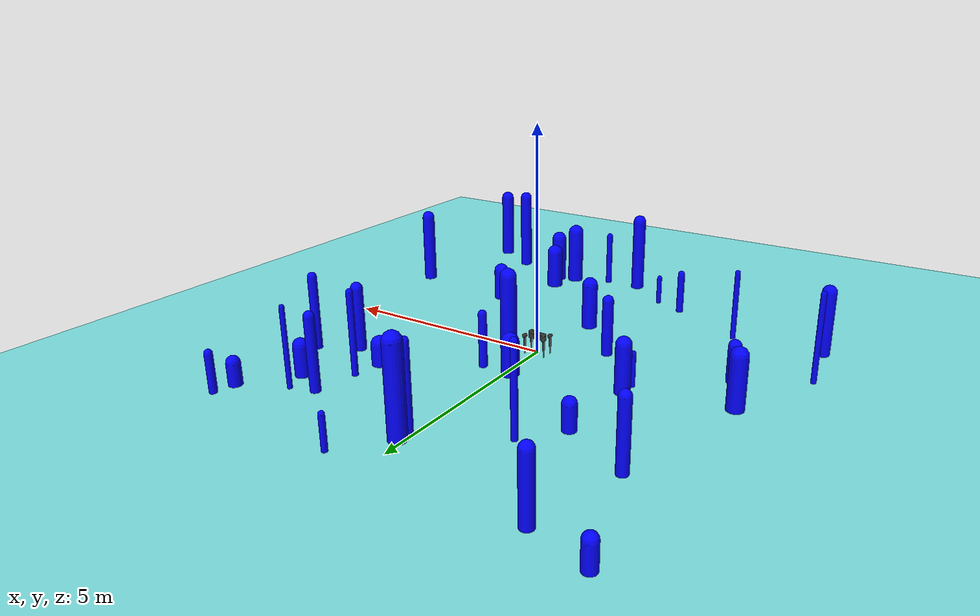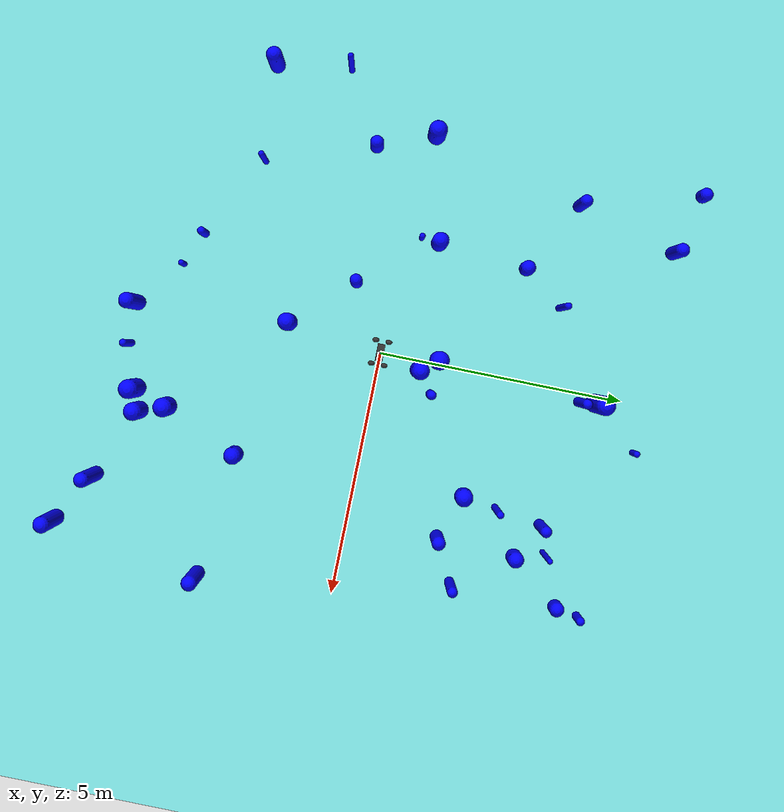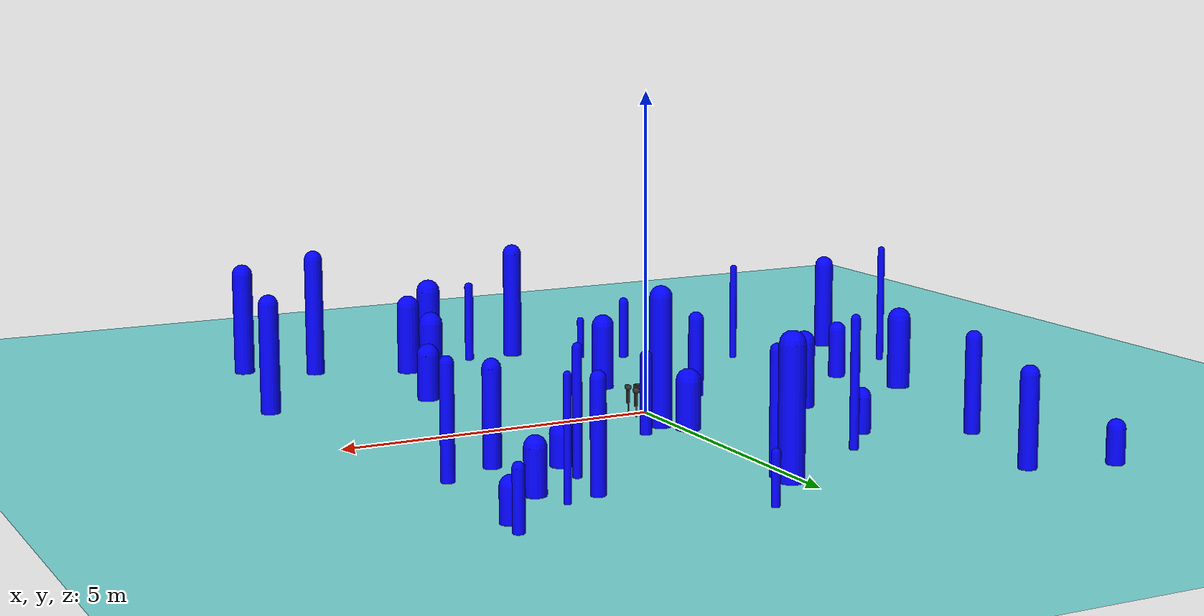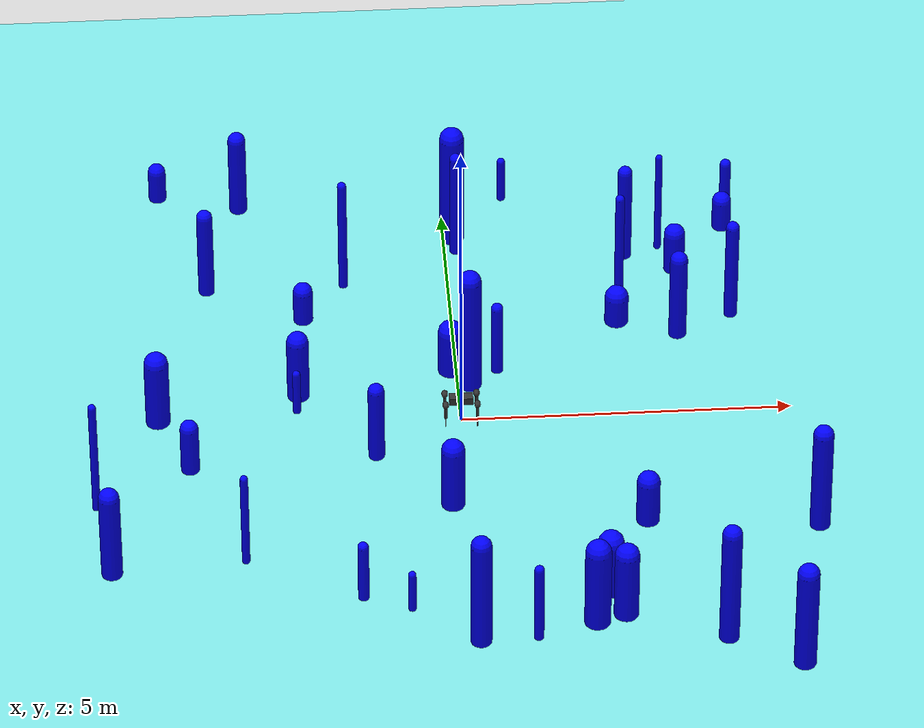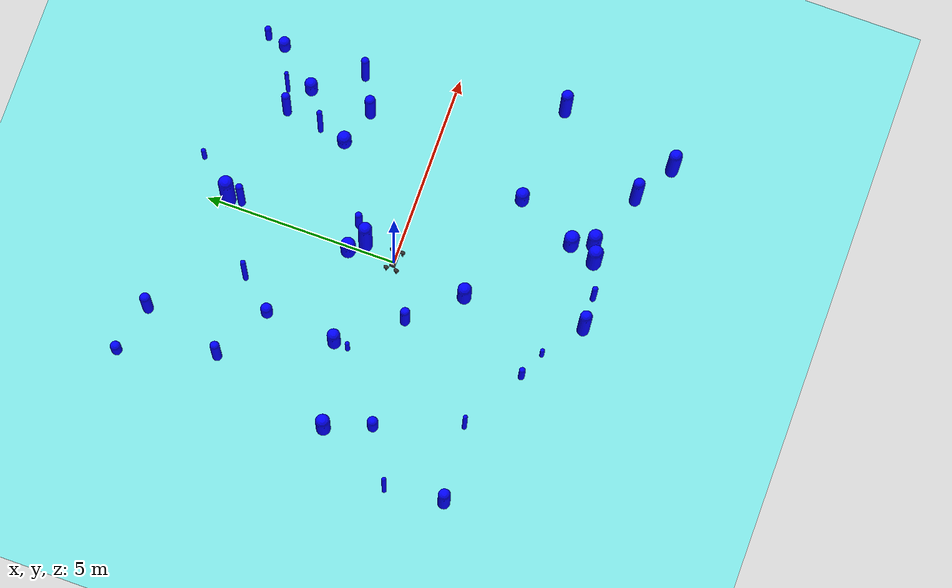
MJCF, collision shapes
<mujoco>
    <include file="aliengo.xml"/>
    <worldbody>

        <body name="obstacle_0" pos="-2.4640199677546835 0.36704106726352936 0.35321662955799593" mocap="true">
            <geom type="capsule" size="0.060185053728693705 0.35321662955799593" rgba="0 0 1 1"/>
        </body>

        <body name="obstacle_1" pos="3.44382551999896 1.8760022613102656 0.7100167168349087" mocap="true">
            <geom type="capsule" size="0.1363404340629551 0.7100167168349087" rgba="0 0 1 1"/>
        </body>

        <body name="obstacle_2" pos="-5.531245005733602 -1.7062367461974128 0.9565465494547261" mocap="true">
            <geom type="capsule" size="0.059006702047307805 0.9565465494547261" rgba="0 0 1 1"/>
        </body>

        <body name="obstacle_3" pos="4.368505242554532 4.527486313776363 0.24095493249636296" mocap="true">
            <geom type="capsule" size="0.14786279231984822 0.24095493249636296" rgba="0 0 1 1"/>
        </body>

        <body name="obstacle_4" pos="0.621016423618503 1.1701590388686123 0.5868228994480017" mocap="true">
            <geom type="capsule" size="0.0924482241285487 0.5868228994480017" rgba="0 0 1 1"/>
        </body>

        <body name="obstacle_5" pos="-2.4272913803787404 0.7381068639163333 0.5168379488376212" mocap="true">
            <geom type="capsule" size="0.16830510645183494 0.5168379488376212" rgba="0 0 1 1"/>
        </body>

        <body name="obstacle_6" pos="-0.9781873758494761 -4.2731529506960655 0.3207253555365417" mocap="true">
            <geom type="capsule" size="0.05828620253237357 0.3207253555365417" rgba="0 0 1 1"/>
        </body>

        <body name="obstacle_7" pos="2.616446324443748 -2.4921917459503375 0.35901909776027446" mocap="true">
            <geom type="capsule" size="0.17470458834657818 0.35901909776027446" rgba="0 0 1 1"/>
        </body>

        <body name="obstacle_8" pos="0.8158934366955721 -5.01192300945023 0.6359988591445763" mocap="true">
            <geom type="capsule" size="0.07384381168509133 0.6359988591445763" rgba="0 0 1 1"/>
        </body>

        <body name="obstacle_9" pos="2.1211486284355257 -4.578332821451083 0.555996852896055" mocap="true">
            <geom type="capsule" size="0.18319736512357987 0.555996852896055" rgba="0 0 1 1"/>
        </body>

        <body name="obstacle_10" pos="3.567212759943722 -5.184255260836483 0.9686302051734226" mocap="true">
            <geom type="capsule" size="0.14888080885640326 0.9686302051734226" rgba="0 0 1 1"/>
        </body>

        <body name="obstacle_11" pos="2.625312998693216 2.9229211816091585 0.9101890815085096" mocap="true">
            <geom type="capsule" size="0.07009185013636896 0.9101890815085096" rgba="0 0 1 1"/>
        </body>

        <body name="obstacle_12" pos="3.323694967266963 4.0558981463439014 0.8634438111267426" mocap="true">
            <geom type="capsule" size="0.05437354947797133 0.8634438111267426" rgba="0 0 1 1"/>
        </body>

        <body name="obstacle_13" pos="-1.3155061046809857 -0.7529760939835093 0.6165080508090655" mocap="true">
            <geom type="capsule" size="0.12393090112485264 0.6165080508090655" rgba="0 0 1 1"/>
        </body>

        <body name="obstacle_14" pos="-4.4348486134965714 5.812602371933666 0.2525618575344683" mocap="true">
            <geom type="capsule" size="0.1368926116616105 0.2525618575344683" rgba="0 0 1 1"/>
        </body>

        <body name="obstacle_15" pos="0.9692979010407354 5.452054386683091 0.3579550220109402" mocap="true">
            <geom type="capsule" size="0.062498810094560764 0.3579550220109402" rgba="0 0 1 1"/>
        </body>

        <body name="obstacle_16" pos="4.606370612798846 -5.811645684588676 0.8364757178828195" mocap="true">
            <geom type="capsule" size="0.16522856591424684 0.8364757178828195" rgba="0 0 1 1"/>
        </body>

        <body name="obstacle_17" pos="4.4645254314380445 4.993321036674663 0.41905055433422744" mocap="true">
            <geom type="capsule" size="0.08545716895738992 0.41905055433422744" rgba="0 0 1 1"/>
        </body>

        <body name="obstacle_18" pos="-2.273761876255348 2.5877191070216874 0.2661883914027227" mocap="true">
            <geom type="capsule" size="0.151322966450664 0.2661883914027227" rgba="0 0 1 1"/>
        </body>

        <body name="obstacle_19" pos="4.302296026530325 2.3147626093980733 0.8280669530111437" mocap="true">
            <geom type="capsule" size="0.10299218776709294 0.8280669530111437" rgba="0 0 1 1"/>
        </body>

        <body name="obstacle_20" pos="-3.3576951714751506 -3.055531314483 0.7819300124593849" mocap="true">
            <geom type="capsule" size="0.05961916593533134 0.7819300124593849" rgba="0 0 1 1"/>
        </body>

        <body name="obstacle_21" pos="1.6904979533339377 -4.725973771639936 0.65888795024083" mocap="true">
            <geom type="capsule" size="0.19405186910360667 0.65888795024083" rgba="0 0 1 1"/>
        </body>

        <body name="obstacle_22" pos="0.18816696237047914 0.837900550738162 0.9904053292571411" mocap="true">
            <geom type="capsule" size="0.17493064026035943 0.9904053292571411" rgba="0 0 1 1"/>
        </body>

        <body name="obstacle_23" pos="-0.022275814752045875 -5.038183945631641 0.89683759525197" mocap="true">
            <geom type="capsule" size="0.15696296134811366 0.89683759525197" rgba="0 0 1 1"/>
        </body>

        <body name="obstacle_24" pos="2.785344522415608 3.8834398442401827 0.795983368973445" mocap="true">
            <geom type="capsule" size="0.11195939421437867 0.795983368973445" rgba="0 0 1 1"/>
        </body>

        <body name="obstacle_25" pos="0.17646400650739125 4.158497941404603 0.8870896454775172" mocap="true">
            <geom type="capsule" size="0.09657554209147873 0.8870896454775172" rgba="0 0 1 1"/>
        </body>

        <body name="obstacle_26" pos="-4.56736327225736 0.2515137759660089 0.5591600546376227" mocap="true">
            <geom type="capsule" size="0.1845930912397714 0.5591600546376227" rgba="0 0 1 1"/>
        </body>

        <body name="obstacle_27" pos="-1.6185162073151265 3.3960734531056893 0.9583384153668524" mocap="true">
            <geom type="capsule" size="0.06950225196106316 0.9583384153668524" rgba="0 0 1 1"/>
        </body>

        <body name="obstacle_28" pos="1.9333520823128492 -4.035212298117987 0.4471510115259584" mocap="true">
            <geom type="capsule" size="0.1949945231408871 0.4471510115259584" rgba="0 0 1 1"/>
        </body>

        <body name="obstacle_29" pos="2.534077620825826 2.2491809287955853 0.2295753180520305" mocap="true">
            <geom type="capsule" size="0.1832255848933786 0.2295753180520305" rgba="0 0 1 1"/>
        </body>

        <body name="obstacle_30" pos="-3.736989503602421 3.384333096336537 0.7151408975777107" mocap="true">
            <geom type="capsule" size="0.12280984791528458 0.7151408975777107" rgba="0 0 1 1"/>
        </body>

        <body name="obstacle_31" pos="5.148539341190348 -2.761423047658047 0.8513431887797076" mocap="true">
            <geom type="capsule" size="0.15425631101061785 0.8513431887797076" rgba="0 0 1 1"/>
        </body>

        <body name="obstacle_32" pos="-3.1736256972670525 5.439632302092429 0.6683485668317808" mocap="true">
            <geom type="capsule" size="0.13745997030130302 0.6683485668317808" rgba="0 0 1 1"/>
        </body>

        <body name="obstacle_33" pos="-4.113485490792665 -0.8971144309609684 0.38801753145699225" mocap="true">
            <geom type="capsule" size="0.14007609899296047 0.38801753145699225" rgba="0 0 1 1"/>
        </body>

        <body name="obstacle_34" pos="-1.6726989299495543 -3.973518619764677 0.47779715921378546" mocap="true">
            <geom type="capsule" size="0.08217755295286627 0.47779715921378546" rgba="0 0 1 1"/>
        </body>

        <body name="obstacle_35" pos="3.53433951595831 3.5005118171574434 0.3316322854915429" mocap="true">
            <geom type="capsule" size="0.16255460727683937 0.3316322854915429" rgba="0 0 1 1"/>
        </body>

        <body name="obstacle_36" pos="-5.329240573847839 -3.210354892779358 0.7200771451958952" mocap="true">
            <geom type="capsule" size="0.1577362645887297 0.7200771451958952" rgba="0 0 1 1"/>
        </body>

        <body name="obstacle_37" pos="-0.23940643799334538 -1.948623988111482 0.5117650314573852" mocap="true">
            <geom type="capsule" size="0.17881957907675056 0.5117650314573852" rgba="0 0 1 1"/>
        </body>

        <body name="obstacle_38" pos="0.13662733354559542 4.4962801717898735 0.9571508433236415" mocap="true">
            <geom type="capsule" size="0.19036005671072354 0.9571508433236415" rgba="0 0 1 1"/>
        </body>

        <body name="obstacle_39" pos="-0.0835448167547641 1.2062193066938764 0.36573608011214526" mocap="true">
            <geom type="capsule" size="0.19342824080676713 0.36573608011214526" rgba="0 0 1 1"/>
        </body>

    </worldbody>
    </mujoco>

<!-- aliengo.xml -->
<mujoco model="aliengo_description">
    <compiler angle="radian" meshdir="meshes/" />
    <size njmax="500" nconmax="100" />
    <option gravity='0 0 -9.806' iterations='50' solver='Newton' timestep='0.002' cone='elliptic'  impratio="100">

    </option>

    <default>
        <geom contype="1" conaffinity="1" friction="0.6 0.3 0.3" rgba="0.5 0.6 0.7 1" margin="0.001" group="0"/>

        <light castshadow="false" diffuse="1 1 1"/>
        <motor ctrlrange="-40 40" ctrllimited="true"/>
        <camera fovy="60"/>
        <joint damping="0.01" armature="0.01" frictionloss="0.2" />

    </default>

    <asset>
        <mesh name="trunk" file="trunk.stl" />
        <mesh name="hip" file="hip.stl" />
        <mesh name="thigh_mirror" file="thigh_mirror.stl" />
        <mesh name="calf" file="calf.stl" />
        <mesh name="thigh" file="thigh.stl" />
    </asset>

    <asset>
        <texture type="skybox" builtin="gradient" rgb1="1.0 1.0 1.0" rgb2="1.0 1.0 1.0" width="512" height="512"/>
        <texture name="plane" type="2d" builtin="flat" rgb1="1 1 1" rgb2="1 1 1" width="512" height="512" mark="cross" markrgb="0 0 0"/>
        <material name="plane" reflectance="0.0" texture="plane" texrepeat="3 3" texuniform="true"/>
    </asset>

    <visual>
        <rgba com="0.502 1.0 0 0.5" contactforce="0.98 0.4 0.4 0.7" contactpoint="1.0 1.0 0.6 0.4"/>
        <scale com="0.2" forcewidth="0.035" contactwidth="0.10" contactheight="0.04"/>
    </visual>

    <worldbody>
        <light directional="true" diffuse=".8 .8 .8" pos="0 0 10" dir="0 0 -10"/>
        <camera name="track" mode="trackcom" pos="0 -1.3 1.6" xyaxes="1 0 0 0 0.707 0.707"/>
        <geom name='floor' type='plane' conaffinity='1' condim='3' contype='1' rgba="0.5 0.9 0.9 0.1" material='plane' pos='0 0 0' size='0 0 1'/>

        <body name="trunk" pos="0 0 0.4">
            <inertial pos="0.00846406 0.00404455 -0.000762916" quat="-3.12625e-05 0.708321 0.00247254 0.705886" mass="9.042" diaginertia="0.174706 0.161175 0.033357" />
            <joint type="free" />
            <geom type="mesh" contype="0" conaffinity="0" group="1" rgba="0.2 0.2 0.2 1" mesh="trunk" />
            <geom size="0.18 0.075 0.056" type="box" rgba="0.2 0.2 0.2 0" />
            <geom size="0.0005 0.0005 0.0005" type="box" contype="0" conaffinity="0" group="1" rgba="0.8 0 0 0" />
            <geom size="0.0005 0.0005 0.0005" type="box" rgba="0.8 0 0 0" />
            <site name="imu" pos="0 0 0"/>

            <body name="FR_hip" pos="0.2399 -0.051 0">
                <inertial pos="-0.022191 -0.015144 -1.5e-05" quat="0.0135493 0.706835 -0.0117635 0.707151" mass="1.993" diaginertia="0.00558695 0.00491009 0.00290132" />
                <joint name="FR_hip_joint" pos="0 0 0" axis="1 0 0" limited="true" range="-1.22 1.22" />
                <geom quat="0 1 0 0" type="mesh" contype="0" conaffinity="0" group="1" rgba="0.2 0.2 0.2 1" mesh="hip" />
                <geom size="0.046 0.0209" pos="0 -0.083 0" quat="0.707107 0.707107 0 0" type="capsule" rgba="0.2 0.2 0.2 0" />
                <body name="FR_thigh" pos="0 -0.083 0">
                    <inertial pos="-0.005607 0.003877 -0.048199" quat="0.694544 -0.0335669 -0.031246 0.717987" mass="0.639" diaginertia="0.0058474 0.00571186 0.000324584" />
                    <joint name="FR_thigh_joint" pos="0 0 0" axis="0 1 0" limited="true" range="0 1.8"/>
                    <geom type="mesh" contype="0" conaffinity="0" group="1" rgba="0.2 0.2 0.2 1" mesh="thigh_mirror" />
                    <geom size="0.125 0.0187 0.0215" pos="0 0 -0.125" quat="0.707107 0 0.707107 0" type="box" rgba="0.2 0.2 0.2 0" />
                    <body name="FR_calf" pos="0 0 -0.25">
                        <inertial pos="0.00215606 4.88427e-05 -0.166671" quat="0.707462 0.00517582 0.00535172 0.706712" mass="0.267" diaginertia="0.00690975 0.00689712 5.4885e-05" />
                        <joint name="FR_calf_joint" pos="0 0 0" axis="0 1 0" limited="true" range="-2.78 -0.65" />
                        <geom type="mesh" contype="0" conaffinity="0" group="1" rgba="0 0 0 1" mesh="calf" />
                        <geom size="0.125 0.0104 0.008" pos="0 0 -0.125" quat="0.707107 0 0.707107 0" type="box" rgba="0 0 0 0" />
                        <geom size="0.0165" pos="0 0 -0.25" contype="0" conaffinity="0" group="1" rgba="0 0 0 1" />
                        <geom size="0.0265" pos="0 0 -0.25" rgba="0 0 0 1" />
                    </body>
                </body>
            </body>
            <body name="FL_hip" pos="0.2399 0.051 0">
                <inertial pos="-0.022191 0.015144 -1.5e-05" quat="-0.0135493 0.706835 0.0117635 0.707151" mass="1.993" diaginertia="0.00558695 0.00491009 0.00290132" />
                <joint name="FL_hip_joint" pos="0 0 0" axis="1 0 0" limited="true" range="-1.22 1.22" />
                <geom type="mesh" contype="0" conaffinity="0" group="1" rgba="0.2 0.2 0.2 1" mesh="hip" />
                <geom size="0.046 0.0209" pos="0 0.083 0" quat="0.707107 0.707107 0 0" type="capsule" rgba="0.2 0.2 0.2 0" />
                <body name="FL_thigh" pos="0 0.083 0">
                    <inertial pos="-0.005607 -0.003877 -0.048199" quat="0.717987 -0.031246 -0.0335669 0.694544" mass="0.639" diaginertia="0.0058474 0.00571186 0.000324584" />
                    <joint name="FL_thigh_joint" pos="0 0 0" axis="0 1 0" limited="true" range="0 1.8"/>
                    <geom type="mesh" contype="0" conaffinity="0" group="1" rgba="0.2 0.2 0.2 1" mesh="thigh" />
                    <geom size="0.125 0.0187 0.0215" pos="0 0 -0.125" quat="0.707107 0 0.707107 0" type="box" rgba="0.2 0.2 0.2 0" />
                    <body name="FL_calf" pos="0 0 -0.25">
                        <inertial pos="0.00215606 4.88427e-05 -0.166671" quat="0.707462 0.00517582 0.00535172 0.706712" mass="0.267" diaginertia="0.00690975 0.00689712 5.4885e-05" />
                        <joint name="FL_calf_joint" pos="0 0 0" axis="0 1 0" limited="true" range="-2.78 -0.65" />
                        <geom type="mesh" contype="0" conaffinity="0" group="1" rgba="0 0 0 1" mesh="calf" />
                        <geom size="0.125 0.0104 0.008" pos="0 0 -0.125" quat="0.707107 0 0.707107 0" type="box" rgba="0 0 0 0" />
                        <geom size="0.0165" pos="0 0 -0.25" contype="0" conaffinity="0" group="1" rgba="0 0 0 1" />
                        <geom size="0.0265" pos="0 0 -0.25" rgba="0 0 0 1" />
                    </body>
                </body>
            </body>
            <body name="RR_hip" pos="-0.2399 -0.051 0">
                <inertial pos="0.022191 -0.015144 -1.5e-05" quat="-0.0117635 0.707151 0.0135493 0.706835" mass="1.993" diaginertia="0.00558695 0.00491009 0.00290132" />
                <joint name="RR_hip_joint" pos="0 0 0" axis="1 0 0" limited="true" range="-1.22 1.22" />
                <geom quat="0 0 0 -1" type="mesh" contype="0" conaffinity="0" group="1" rgba="0.2 0.2 0.2 1" mesh="hip" />
                <geom size="0.046 0.0209" pos="0 -0.083 0" quat="0.707107 0.707107 0 0" type="capsule" rgba="0.2 0.2 0.2 0" />
                <body name="RR_thigh" pos="0 -0.083 0">
                    <inertial pos="-0.005607 0.003877 -0.048199" quat="0.694544 -0.0335669 -0.031246 0.717987" mass="0.639" diaginertia="0.0058474 0.00571186 0.000324584" />
                    <joint name="RR_thigh_joint" pos="0 0 0" axis="0 1 0" limited="true" range="0 1.8"/>
                    <geom type="mesh" contype="0" conaffinity="0" group="1" rgba="0.2 0.2 0.2 1" mesh="thigh_mirror" />
                    <geom size="0.125 0.0187 0.0215" pos="0 0 -0.125" quat="0.707107 0 0.707107 0" type="box" rgba="0.2 0.2 0.2 0" />
                    <body name="RR_calf" pos="0 0 -0.25">
                        <inertial pos="0.00215606 4.88427e-05 -0.166671" quat="0.707462 0.00517582 0.00535172 0.706712" mass="0.267" diaginertia="0.00690975 0.00689712 5.4885e-05" />
                        <joint name="RR_calf_joint" pos="0 0 0" axis="0 1 0" limited="true" range="-2.78 -0.65" />
                        <geom type="mesh" contype="0" conaffinity="0" group="1" rgba="0 0 0 1" mesh="calf" />
                        <geom size="0.125 0.0104 0.008" pos="0 0 -0.125" quat="0.707107 0 0.707107 0" type="box" rgba="0 0 0 0" />
                        <geom size="0.0165" pos="0 0 -0.25" contype="0" conaffinity="0" group="1" rgba="0 0 0 1" />
                        <geom size="0.0265" pos="0 0 -0.25" rgba="0 0 0 1" />
                    </body>
                </body>
            </body>
            <body name="RL_hip" pos="-0.2399 0.051 0">
                <inertial pos="0.022191 0.015144 -1.5e-05" quat="0.0117635 0.707151 -0.0135493 0.706835" mass="1.993" diaginertia="0.00558695 0.00491009 0.00290132" />
                <joint name="RL_hip_joint" pos="0 0 0" axis="1 0 0" limited="true" range="-1.22 1.22" />
                <geom quat="0 0 1 0" type="mesh" contype="0" conaffinity="0" group="1" rgba="0.2 0.2 0.2 1" mesh="hip" />
                <geom size="0.046 0.0209" pos="0 0.083 0" quat="0.707107 0.707107 0 0" type="capsule" rgba="0.2 0.2 0.2 0" />
                <body name="RL_thigh" pos="0 0.083 0">
                    <inertial pos="-0.005607 -0.003877 -0.048199" quat="0.717987 -0.031246 -0.0335669 0.694544" mass="0.639" diaginertia="0.0058474 0.00571186 0.000324584" />
                    <joint name="RL_thigh_joint" pos="0 0 0" axis="0 1 0" limited="true" range="0 1.8"/>
                    <geom type="mesh" contype="0" conaffinity="0" group="1" rgba="0.2 0.2 0.2 1" mesh="thigh" />
                    <geom size="0.125 0.0187 0.0215" pos="0 0 -0.125" quat="0.707107 0 0.707107 0" type="box" rgba="0.2 0.2 0.2 0" />
                    <body name="RL_calf" pos="0 0 -0.25">
                        <inertial pos="0.00215606 4.88427e-05 -0.166671" quat="0.707462 0.00517582 0.00535172 0.706712" mass="0.267" diaginertia="0.00690975 0.00689712 5.4885e-05" />
                        <joint name="RL_calf_joint" pos="0 0 0" axis="0 1 0" limited="true" range="-2.78 -0.65" />
                        <geom type="mesh" contype="0" conaffinity="0" group="1" rgba="0 0 0 1" mesh="calf" />
                        <geom size="0.125 0.0104 0.008" pos="0 0 -0.125" quat="0.707107 0 0.707107 0" type="box" rgba="0 0 0 0" />
                        <geom size="0.0165" pos="0 0 -0.25" contype="0" conaffinity="0" group="1" rgba="0 0 0 1" />
                        <geom size="0.0265" pos="0 0 -0.25" rgba="0 0 0 1" />
                    </body>
                </body>
            </body>
        </body>
    </worldbody>

    <actuator>
        <motor name="FR_hip"       gear="1" joint="FR_hip_joint"/>
        <motor name="FR_thigh"       gear="1" joint="FR_thigh_joint"/>
        <motor name="FR_calf"       gear="1" joint="FR_calf_joint"/>
        <motor name="FL_hip"     gear="1" joint="FL_hip_joint"/>
        <motor name="FL_thigh"     gear="1" joint="FL_thigh_joint"/>
        <motor name="FL_calf"     gear="1" joint="FL_calf_joint"/>
        <motor name="RR_hip"      gear="1" joint="RR_hip_joint"/>
        <motor name="RR_thigh"   gear="1" joint="RR_thigh_joint"/>
        <motor name="RR_calf"   gear="1" joint="RR_calf_joint" />
        <motor name="RL_hip"      gear="1" joint="RL_hip_joint"/>
        <motor name="RL_thigh"      gear="1" joint="RL_thigh_joint"/>
        <motor name="RL_calf"      gear="1" joint="RL_calf_joint"/>
    </actuator>

    <sensor>

        <jointpos name="FR_hip_pos"     joint="FR_hip_joint"/>
        <jointpos name="FR_thigh_pos"   joint="FR_thigh_joint"/>
        <jointpos name="FR_calf_pos"    joint="FR_calf_joint"/>
        <jointpos name="FL_hip_pos"     joint="FL_hip_joint"/>
        <jointpos name="FL_thigh_pos"   joint="FL_thigh_joint"/>
        <jointpos name="FL_calf_pos"    joint="FL_calf_joint"/>
        <jointpos name="RR_hip_pos"     joint="RR_hip_joint"/>
        <jointpos name="RR_thigh_pos"   joint="RR_thigh_joint"/>
        <jointpos name="RR_calf_pos"    joint="RR_calf_joint" />
        <jointpos name="RL_hip_pos"     joint="RL_hip_joint"/>
        <jointpos name="RL_thigh_pos"   joint="RL_thigh_joint"/>
        <jointpos name="RL_calf_pos"    joint="RL_calf_joint"/>

        <jointvel name="FR_hip_vel"     joint="FR_hip_joint"/>
        <jointvel name="FR_thigh_vel"   joint="FR_thigh_joint"/>
        <jointvel name="FR_calf_vel"    joint="FR_calf_joint"/>
        <jointvel name="FL_hip_vel"     joint="FL_hip_joint"/>
        <jointvel name="FL_thigh_vel"   joint="FL_thigh_joint"/>
        <jointvel name="FL_calf_vel"    joint="FL_calf_joint"/>
        <jointvel name="RR_hip_vel"     joint="RR_hip_joint"/>
        <jointvel name="RR_thigh_vel"   joint="RR_thigh_joint"/>
        <jointvel name="RR_calf_vel"    joint="RR_calf_joint" />
        <jointvel name="RL_hip_vel"     joint="RL_hip_joint"/>
        <jointvel name="RL_thigh_vel"   joint="RL_thigh_joint"/>
        <jointvel name="RL_calf_vel"    joint="RL_calf_joint"/>

        <accelerometer name="Body_Acc" site="imu"/>

        <gyro name="Body_Gyro" site="imu"/>

        <framepos name="Body_Pos" objtype="site" objname="imu"/>

        <framequat name="Body_Quat" objtype="site" objname="imu"/>

    </sensor>

</mujoco>
